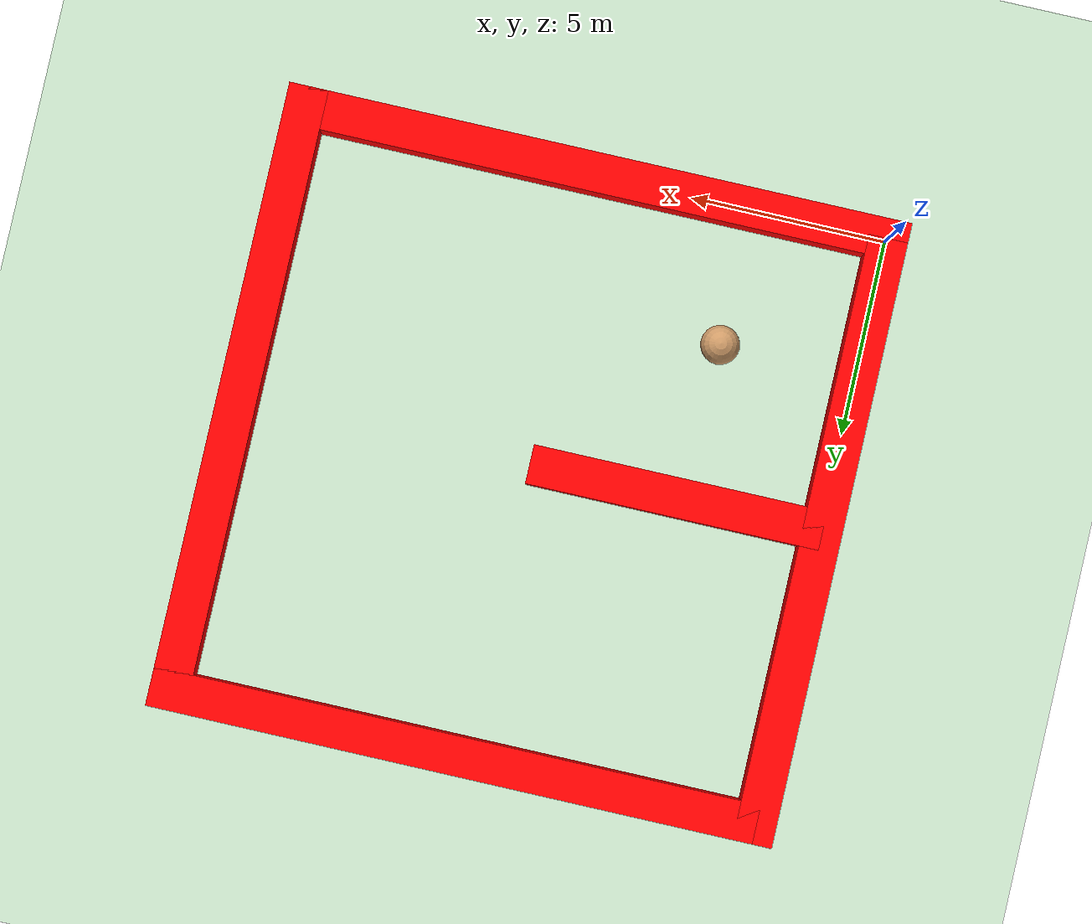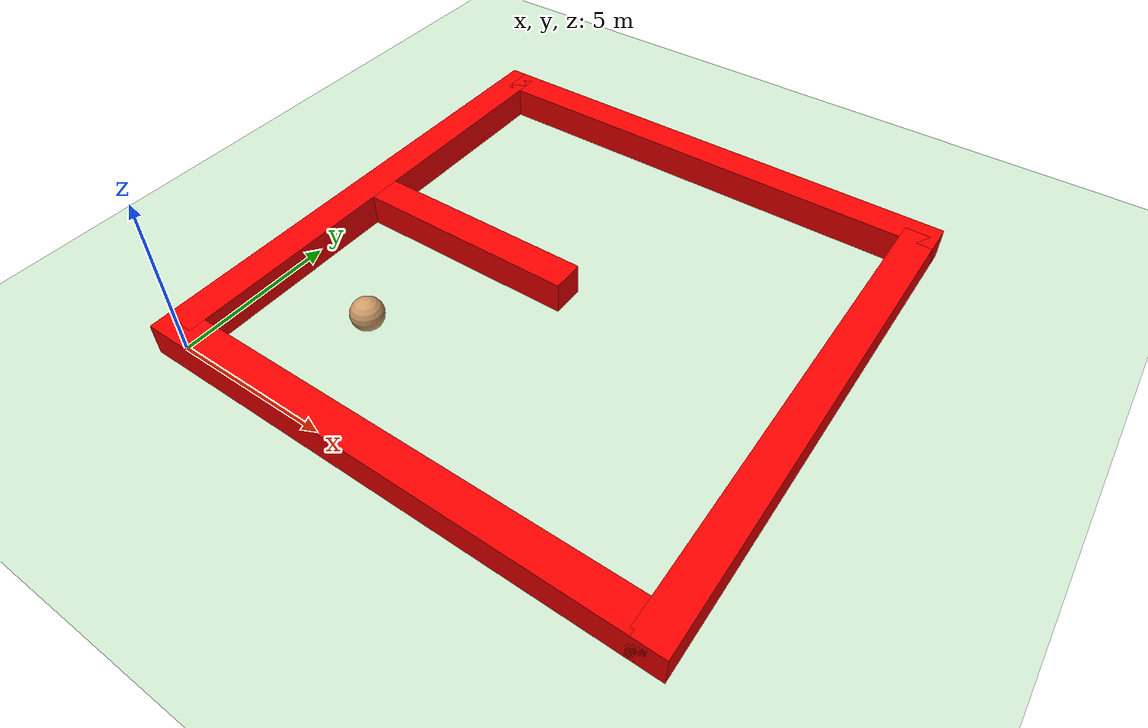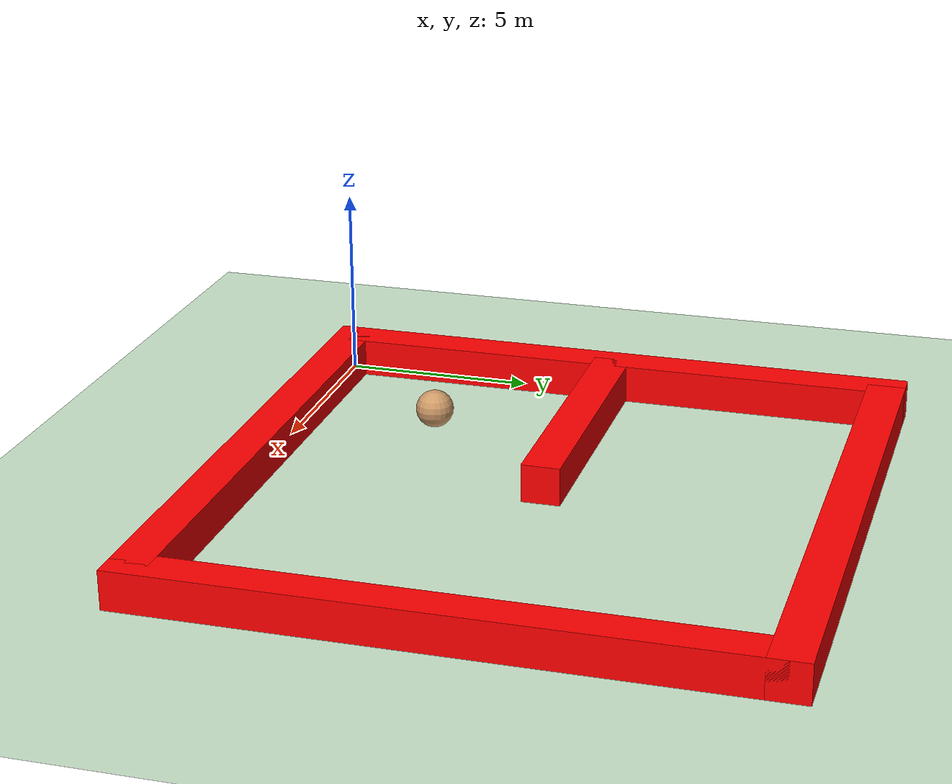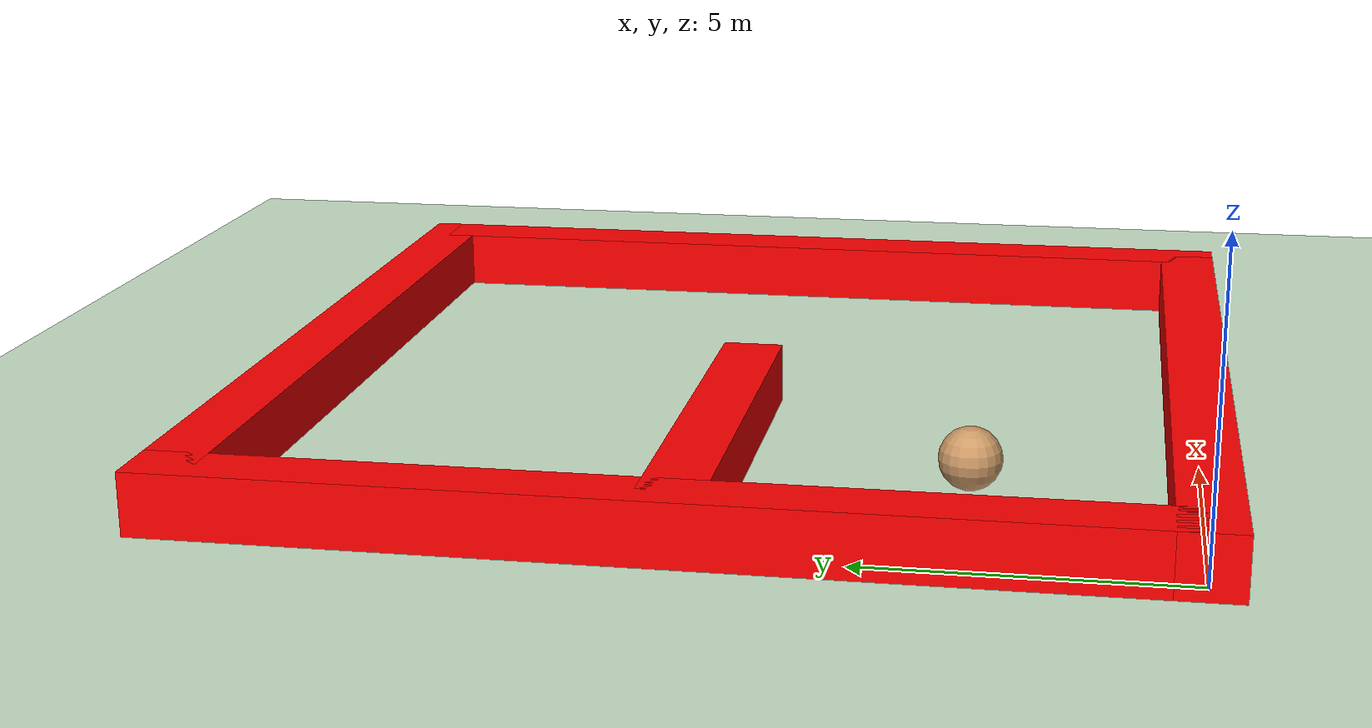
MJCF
<mujoco>
  <compiler angle="degree" coordinate="local" inertiafromgeom="true"/>
  <option integrator="RK4" timestep="0.001"/>
  <default>
    <joint armature="0" damping="0" limited="false"/>
    <geom conaffinity="0" condim="3" density="0.001" friction="1 1 0.5" margin="0" rgba="0.8 0.6 0.4 1"/>
  </default>
  <asset>
    <texture builtin="gradient" height="100" rgb1="1 1 1" rgb2="0 0 0" type="skybox" width="100"/>
    <texture builtin="flat" height="1278" mark="cross" markrgb="1 1 1" name="texgeom" random="0.01" rgb1="0.8 0.6 0.4" rgb2="0.8 0.6 0.4" type="cube" width="127"/>
    <texture builtin="checker" height="100" name="texplane" rgb1="0 0 0" rgb2="0.8 0.8 0.8" type="2d" width="100"/>
    <material name="MatPlane" reflectance="0.5" shininess="1" specular="1" texrepeat="30 30" texture="texplane"/>
    <material name="geom" texture="texgeom" texuniform="true"/>
  </asset>
  <worldbody>
    <camera name="up"  pos="7.5 7.5 25" xyaxes="0.001 0 0 0 3.14 0"/>
    <light cutoff="100" diffuse="1 1 1" dir="-0 0 -1.3" directional="true" exponent="1" pos="0 0 1.3" specular=".1 .1 .1"/>
    <geom conaffinity="1" condim="3" material="MatPlane" name="floor" pos="0 0 0" rgba="0.8 0.9 0.8 1" size="40 40 40" type="plane"/>
    <body name="torso" pos="3.5 3.5 0">
      <geom name="pointbody" pos="0 0 0.5" size="0.5" type="sphere"/>
      <!--geom name="pointarrow" pos="0.6 0 0.5" size="0.5 0.1 0.1" type="box"/-->
      <joint axis="1 0 0" name="ballx" pos="0 0 0" type="slide"/>
      <joint axis="0 1 0" name="bally" pos="0 0 0" type="slide"/>
      <!--joint axis="0 0 1" limited="false" name="rot" pos="0 0 0" type="hinge"/-->
    </body>

    <geom conaffinity="1" fromto="0 15 0.5 15.5 15 0.5" name="sideN" rgba="1 0 0 1" size="0.5" type="box"/>
	<geom conaffinity="1" fromto="15 15 0.5 15 -0.5 0.5" name="sideE" rgba="1 0 0 1" size="0.5" type="box"/>
	<geom conaffinity="1" fromto="15 0 0.5 -0.5 0 0.5" name="sideS" rgba="1 0 0 1" size="0.5" type="box"/>
	<geom conaffinity="1" fromto="0 0 0.5 0 15.5 0.5" name="sideW" rgba="1 0 0 1" size="0.5" type="box"/>

	<geom conaffinity="1" fromto="0 7.5 0.5 7.5 7.5 0.5" name="Wall" rgba="1 0 0 1" size="0.5" type="box"/>

  </worldbody>
  <actuator>
    <!-- Those are just dummy actuators for providing ranges -->
    <motor ctrllimited="true" ctrlrange="-1 1" joint="ballx"/>
    <motor ctrllimited="true" ctrlrange="-1 1" joint="bally"/>
  </actuator>
</mujoco>
